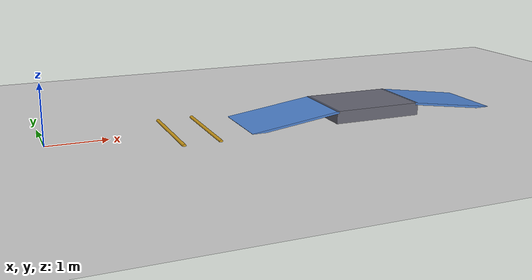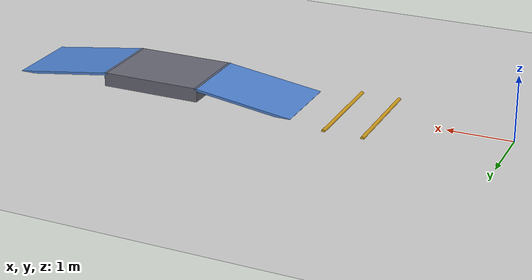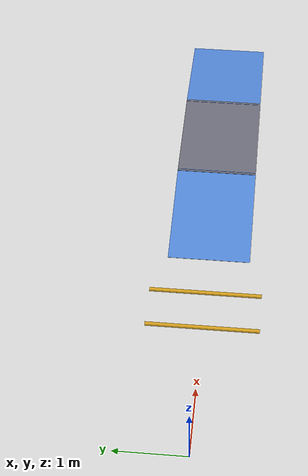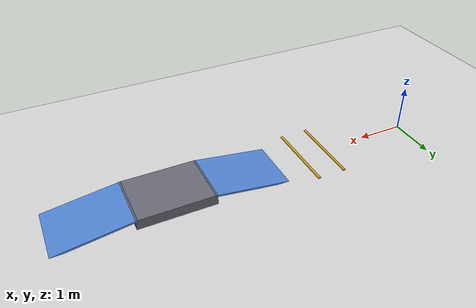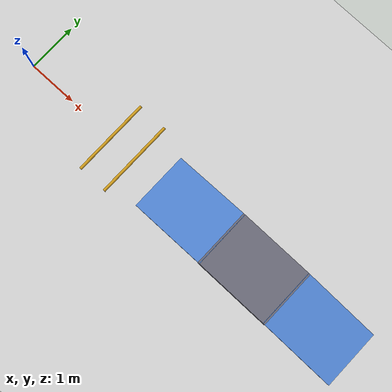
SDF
<?xml version="1.0" ?>
<sdf version="1.6">
  <world name="biped">

    <physics name="1ms" type="ignored">
      <max_step_size>0.001</max_step_size>
      <real_time_factor>1.0</real_time_factor>
    </physics>

    <plugin filename="gz-sim-physics-system" name="gz::sim::systems::Physics"/>
    <plugin filename="gz-sim-user-commands-system" name="gz::sim::systems::UserCommands"/>
    <plugin filename="gz-sim-scene-broadcaster-system" name="gz::sim::systems::SceneBroadcaster"/>
    <plugin filename="gz-sim-contact-system" name="gz::sim::systems::Contact"/>
    <!-- the one we're adding: makes IMU sensors actually run -->
    <plugin filename="gz-sim-imu-system" name="gz::sim::systems::Imu"/>

    <light type="directional" name="sun">
      <cast_shadows>true</cast_shadows>
      <pose>0 0 10 0 0 0</pose>
      <diffuse>0.8 0.8 0.8 1</diffuse>
      <specular>0.2 0.2 0.2 1</specular>
      <attenuation>
        <range>1000</range>
        <constant>0.9</constant>
        <linear>0.01</linear>
        <quadratic>0.001</quadratic>
      </attenuation>
      <direction>-0.5 0.1 -0.9</direction>
    </light>

    <model name="bump_1">
      <static>true</static>
      <pose>2.0 0 0 1.5708 0 0</pose>
      <link name="link">
        <collision name="c"><geometry><cylinder><radius>0.03</radius><length>1.6</length></cylinder></geometry></collision>
        <visual name="v"><geometry><cylinder><radius>0.03</radius><length>1.6</length></cylinder></geometry>
          <material><ambient>0.8 0.6 0.1 1</ambient><diffuse>0.8 0.6 0.1 1</diffuse></material>
        </visual>
      </link>
    </model>

    <model name="bump_2">
      <static>true</static>
      <pose>2.6 0 0 1.5708 0 0</pose>
      <link name="link">
        <collision name="c"><geometry><cylinder><radius>0.03</radius><length>1.6</length></cylinder></geometry></collision>
        <visual name="v"><geometry><cylinder><radius>0.03</radius><length>1.6</length></cylinder></geometry>
          <material><ambient>0.8 0.6 0.1 1</ambient><diffuse>0.8 0.6 0.1 1</diffuse></material>
        </visual>
      </link>
    </model>

    <model name="ramp_up">
      <static>true</static>
      <pose>4.0 0 0.09 0 -0.1396 0</pose>
      <link name="link">
        <collision name="c"><geometry><box><size>1.6 1.2 0.04</size></box></geometry></collision>
        <visual name="v"><geometry><box><size>1.6 1.2 0.04</size></box></geometry>
          <material><ambient>0.3 0.5 0.8 1</ambient><diffuse>0.3 0.5 0.8 1</diffuse></material>
        </visual>
      </link>
    </model>

    <model name="plateau">
      <static>true</static>
      <pose>5.55 0 0.11 0 0 0</pose>
      <link name="link">
        <collision name="c"><geometry><box><size>1.6 1.2 0.22</size></box></geometry></collision>
        <visual name="v"><geometry><box><size>1.6 1.2 0.22</size></box></geometry>
          <material><ambient>0.4 0.4 0.45 1</ambient><diffuse>0.4 0.4 0.45 1</diffuse></material>
        </visual>
      </link>
    </model>

    <model name="ramp_down">
      <static>true</static>
      <pose>7.1 0 0.09 0 0.1396 0</pose>
      <link name="link">
        <collision name="c"><geometry><box><size>1.6 1.2 0.04</size></box></geometry></collision>
        <visual name="v"><geometry><box><size>1.6 1.2 0.04</size></box></geometry>
          <material><ambient>0.3 0.5 0.8 1</ambient><diffuse>0.3 0.5 0.8 1</diffuse></material>
        </visual>
      </link>
    </model>

    <model name="ground_plane">
      <static>true</static>
      <link name="link">
        <collision name="collision">
          <geometry>
            <plane><normal>0 0 1</normal><size>100 100</size></plane>
          </geometry>
        </collision>
        <visual name="visual">
          <geometry>
            <plane><normal>0 0 1</normal><size>100 100</size></plane>
          </geometry>
          <material>
            <ambient>0.8 0.8 0.8 1</ambient>
            <diffuse>0.8 0.8 0.8 1</diffuse>
            <specular>0.8 0.8 0.8 1</specular>
          </material>
        </visual>
      </link>
    </model>

  </world>
</sdf>
